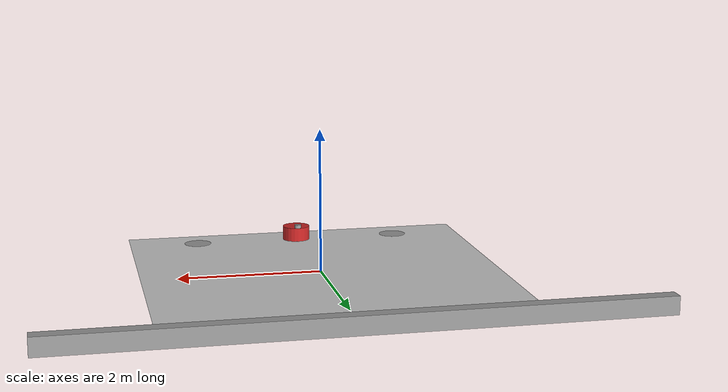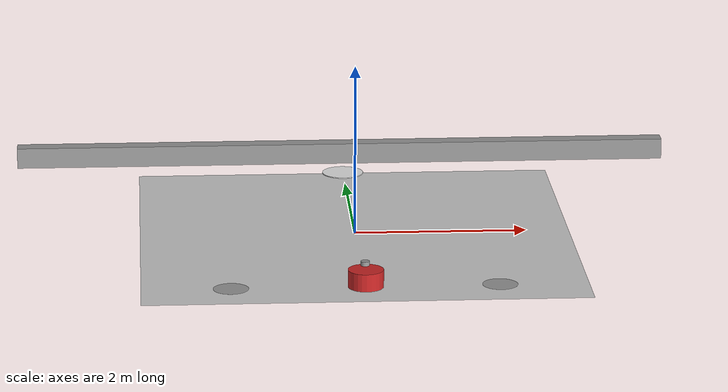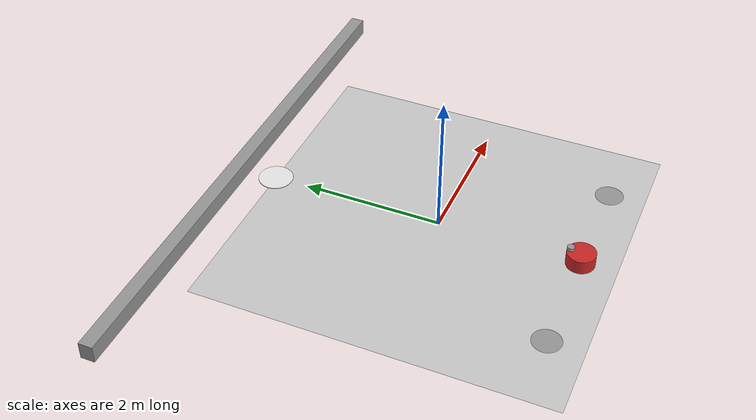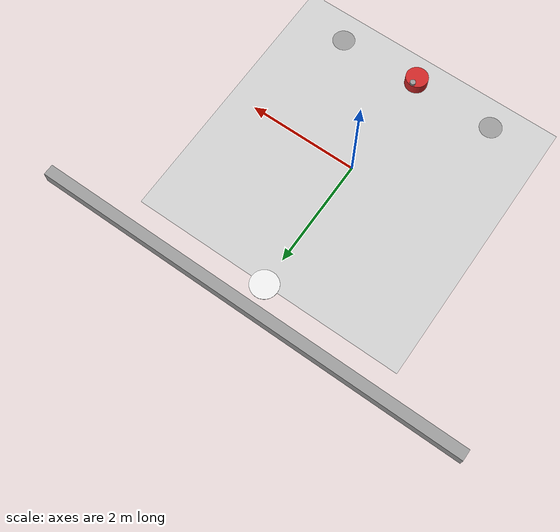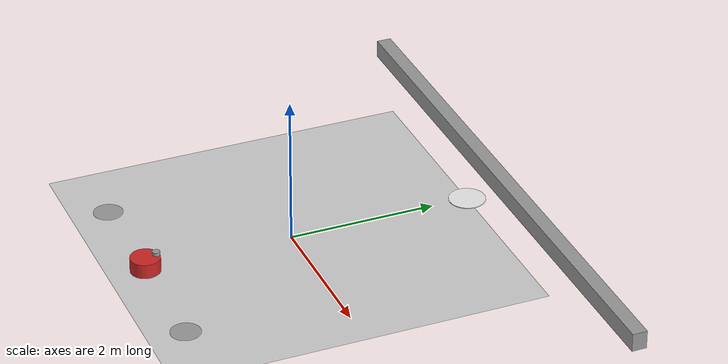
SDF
<?xml version="1.0"?>
<sdf version="1.4">
  <world name="default">
    <scene>
      <shadows>0</shadows>
    </scene>
    <physics type='ode'>
      <max_step_size>0.001</max_step_size>
      <real_time_factor>1</real_time_factor>
      <real_time_update_rate>2000</real_time_update_rate>
      <gravity>0 0 -9.8</gravity>
    </physics>

    <!-- World Camera -->
    <gui>
      <camera name='camera_view'>
	<pose>0 0 10 0 1.57079 1.57079</pose>
      </camera>
    </gui>

    <!-- Ground -->
    <include>
      <name>GroundPlane</name>
      <uri>model://DAC_BasicPlane</uri>
    </include>

    <!-- Global light source -->
     <include>
      <uri>model://sun</uri>
    </include>

    <!-- Robot -->
    <include>
      <pose>0 -2 0 0 0  1.57079</pose>
      <name>Bug</name>
      <uri>model://DAC_Bug</uri>
    </include>

    <!-- Wall -->
    <include>
      <pose>0 3 0 0 0  0</pose>
      <name>Wall</name>
      <uri>model://DAC_SimpleWall</uri>
    </include>

    <!-- Reset Points -->
    <include>
      <pose>-1.5 -2 0 0 0  1.57079</pose>
      <name>Reset_0</name>
      <uri>model://DAC_Reset</uri>
    </include>

    <include>
      <pose>0 -2 0 0 0  1.57079</pose>
      <name>Reset_1</name>
      <uri>model://DAC_Reset</uri>
    </include>

    <include>
      <pose>1.5 -2 0 0 0  1.57079</pose>
      <name>Reset_2</name>
      <uri>model://DAC_Reset</uri>
    </include>

    <!-- Target  -->
    <include>
      <pose> 0 2.5 0 0 0 0</pose>
      <uri>model://DAC_Target</uri>
    </include>

  </world>
</sdf>

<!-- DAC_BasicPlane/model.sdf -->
<sdf version="1.4">
  <model name="ground_plane">
    <static>true</static>
    <link name="link">
      <collision name="collision">
        <geometry>
          <plane>
            <normal>0 0 1</normal>
            <size>5 5</size>
          </plane>
        </geometry>
        <surface>
          <friction>
            <ode>
              <mu>100</mu>
              <mu2>50</mu2>
            </ode>
          </friction>
        </surface>
      </collision>
      <collision name="collision">
	<pose>0 0 -1 0 0 0</pose>
        <geometry>
          <box>
            <size>5 5 0.02</size>
          </box>
        </geometry>
      </collision>
      <visual name="visual">
        <cast_shadows>false</cast_shadows>
        <geometry>
          <plane>
            <normal>0 0 1</normal>
            <size>5 5</size>
          </plane>
        </geometry>
        <material>
          <script>
	    <uri>model://DAC_BasicPlane/materials</uri>
	    <name>DAC/Plane</name>
          </script>
        </material>
      </visual>
    </link>
  </model>
</sdf>

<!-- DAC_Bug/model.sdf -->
<sdf version='1.4'>
  <!-- Robot model -->
  <model name="SDIC_Bug">
    <!-- Body elements -->
    <link name='bug'>
      <pose>0 0 .1 0 0 0</pose>
      <inertial>
	<mass>5</mass>
	<inertia>
	  <ixx>1</ixx>
	  <ixy>0</ixy>
	  <ixz>0</ixz>
	  <iyy>1</iyy>
	  <iyz>0</iyz>
	  <izz>1</izz>
	</inertia>
      </inertial>
      <collision name='collision'>
	<geometry>
	  <cylinder>
	    <radius>.2</radius>
	    <length>.2</length>
	  </cylinder>
	</geometry>
	<surface>
	  <friction>
	    <ode>
	      <mu>0.1</mu>
	      <mu2>0</mu2>
	      <slip1>0.0</slip1>
	      <slip2>0.0</slip2>
	    </ode>
	  </friction>
	</surface>
      </collision>

      <visual name='visual'>
	<geometry>
	  <cylinder>
	    <radius>.2</radius>
	    <length>.2</length>
	  </cylinder>
	</geometry>
	<material>
	  <script>
	    <uri>file://media/materials/scripts/gazebo.material</uri>
	    <name>Gazebo/Red</name>
	  </script>
	</material>
      </visual>

      <visual name='visualCamera'>
	<pose>0.15 0 .125 0 0 0</pose>
	<geometry>
	  <cylinder>
	    <radius>.05</radius>
	    <length>.05</length>
	  </cylinder>
	</geometry>
	<material>
	  <script>
	    <uri>file://media/materials/scripts/gazebo.material</uri>
	    <name>Gazebo/Grey</name>
	  </script>
	</material>
      </visual>

      <!-- Sensors -->
      <!-- Proximity sensor -->
      <sensor name="laser" type="ray">
	<pose>0 0 0.075 0 0 0 </pose>
	<ray>
	<scan>
	  <horizontal>
	    <samples>32</samples>
	    <resolution>1</resolution>
	    <min_angle>-3</min_angle>
	    <max_angle>3</max_angle>
	  </horizontal>
	</scan>
	<range>
	  <min>0.205</min>
	  <max>2.0</max>
	  <resolution>0.01</resolution>
	</range>
	<noise>
	  <type>gaussian</type>
	  <mean>0.0</mean>
	  <stddev>0.02</stddev>
	</noise>
      </ray>
      <always_on>1</always_on>
      <update_rate>25</update_rate>
      <visualize>0</visualize>
      </sensor>

      <!-- Proximity sensor -->
      <sensor name="laser_target" type="ray">
	<pose>0 0 0.25 0 0 0 </pose>
	<ray>
	<scan>
	  <horizontal>
	    <samples>32</samples>
	    <resolution>1</resolution>
	    <min_angle>-3</min_angle>
	    <max_angle>3</max_angle>
	  </horizontal>
	</scan>
	<range>
	  <min>0.26</min>
	  <max>2.5</max>
	  <resolution>0.01</resolution>
	</range>
	<noise>
	  <type>gaussian</type>
	  <mean>0.0</mean>
	  <stddev>0.02</stddev>
	</noise>
      </ray>
      <always_on>1</always_on>
      <update_rate>25</update_rate>
      <visualize>0</visualize>
      </sensor>

      <!-- Proximity sensor Gripper -->
      <sensor name="camera" type="camera">
	<pose>0.2 0 0.25 0 1.1 0</pose>
	<camera>
	  <horizontal_fov>0.8047</horizontal_fov>
          <image>
            <width>32</width>
            <height>28</height>
          </image>
          <clip>
            <near>0.02</near>
            <far>20</far>
          </clip>
	  <noise>
	    <type>gaussian</type>
	    <mean>0.0</mean>
	    <stddev>0.001</stddev>
	  </noise>
	</camera>
	<always_on>1</always_on>
	<update_rate>30</update_rate>
	<visualize>0</visualize>
      </sensor>
    </link>

    <plugin name="model_vel" filename="libvel_plugin.so" />
    <plugin name="model_reset" filename="libreset_plugin.so" />
  </model>
</sdf>

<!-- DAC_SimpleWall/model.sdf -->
<sdf version='1.4'>
  <model name='Wall'>
    <link name='Wall_1'>
      <collision name='Wall_1_Collision'>
        <geometry>
          <box>
            <size>8 0.2 0.24999</size>
          </box>
        </geometry>
        <pose>0 0 0.124999 0 -0 0</pose>
      </collision>
      <visual name='Wall_1_Visual'>
        <pose>0 0 0.124999 0 -0 0</pose>
        <geometry>
          <box>
            <size>8 0.2 0.24999</size>
          </box>
        </geometry>
        <material>
          <script>
            <uri>file://media/materials/scripts/gazebo.material</uri>
            <name>Gazebo/Grey</name>
          </script>
        </material>
      </visual>
      <velocity_decay>
        <linear>0</linear>
        <angular>0</angular>
      </velocity_decay>
      <pose>0 0 0 0 0 0</pose>

    </link>

    <static>1</static>
  </model>
</sdf>

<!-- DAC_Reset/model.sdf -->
<sdf version='1.4'>
  <model name='Reset'>
    <pose>0 0 0 0 0 0</pose>
    <link name='link'>
      <visual name='visual'>
        <pose>0 0 0.002 0 0 0</pose>
        <geometry>
         <cylinder>
            <radius> .2 </radius>
	    <length> 0.0001 </length>
          </cylinder>
        </geometry>
        <material>
          <script>
            <uri>file://media/materials/scripts/gazebo.material</uri>
	    <name>Gazebo/Grey</name>
          </script>
        </material>
      </visual>
      <velocity_decay>
        <linear>0</linear>
        <angular>0</angular>
      </velocity_decay>
    </link>
    <static>1</static>
  </model>
</sdf>

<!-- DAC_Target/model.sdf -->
<sdf version='1.4'>
  <model name='Wall'>
    <link name='Target_1'>
      <collision name='Target_1_Collision'>
        <geometry>
          <cylinder>
	    <radius> 0.24999 </radius>
	    <length> 0.24999 </length>
	  </cylinder>
        </geometry>
        <pose>0 0 0.34999 0 -0 0</pose>
      </collision>
      <visual name='Target_1_Visual'>
        <pose>0 0 0 0 0 0</pose>
        <geometry>
         <cylinder>
            <radius> 0.24999 </radius>
	    <length> 0.01 </length>
          </cylinder>
	</geometry>
        <material>
          <script>
            <uri>file://media/materials/scripts/gazebo.material</uri>
            <name>Gazebo/White</name>
          </script>
        </material>
      </visual>
      <velocity_decay>
        <linear>0</linear>
        <angular>0</angular>
      </velocity_decay>
      <pose> 0 0 0 0 0 0</pose>
    </link>

    <static>1</static>
  </model>
</sdf>
